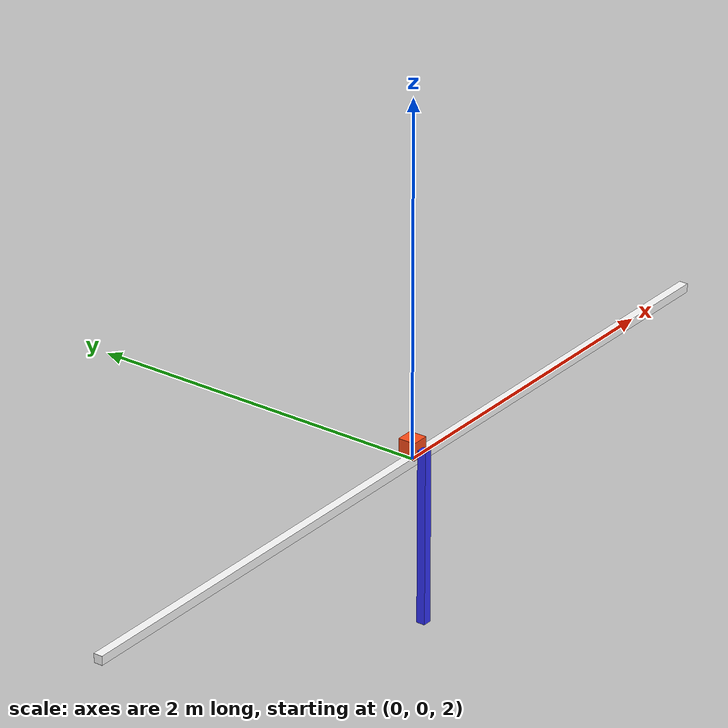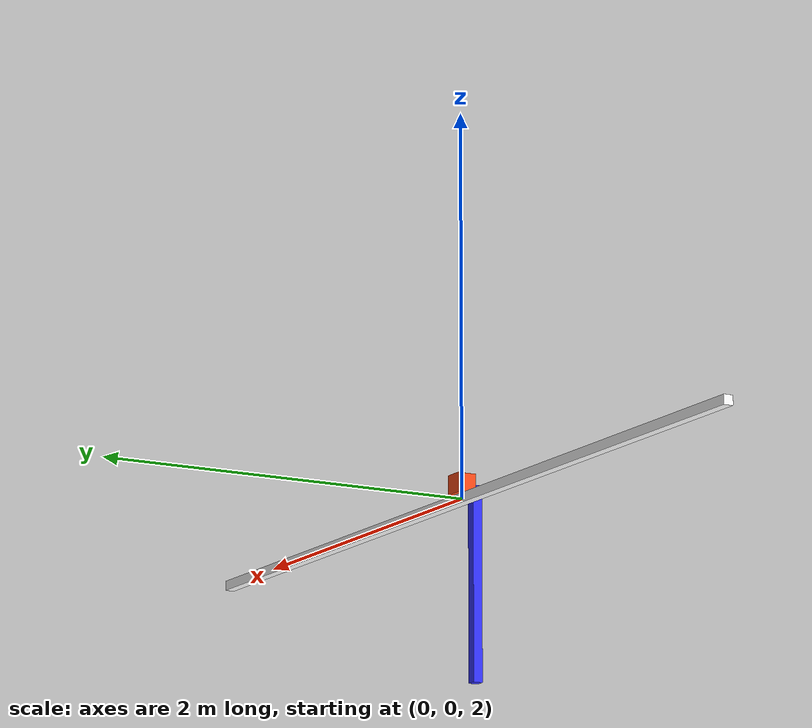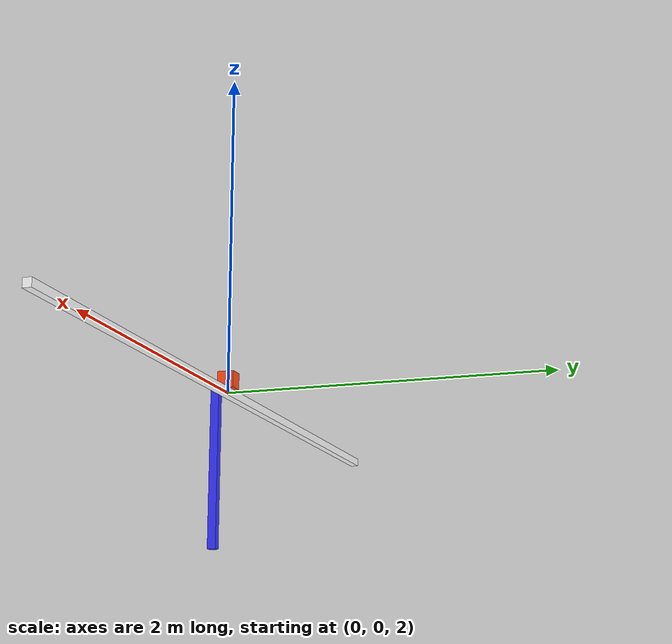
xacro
<?xml version="1.0"?>
<robot xmlns:xacro="http://www.ros.org/wiki/xacro">

    <!-- link colours -->
    <material name="white">
        <color rgba="1 1 1 1"/>
    </material>

    <material name="orange">
        <color rgba="1 0.3 0.1 1"/>
    </material>

    <material name="blue">
        <color rgba="0.2 0.2 1 1"/>
    </material>

    <material name="black">
        <color rgba="0 0 0 1"/>
    </material>

    <xacro:include filename="inertial_macros.xacro" />

    <!-- by convention, the first link for a mobile robot in ros should be named base_link -->
    <link name="world"></link>

    <!-- attaches the chassis to the base link (body frame) -->
    <joint name="bar_joint" type="fixed">
        <parent link="world"/>
        <child link="slider_bar"/>
        <origin xyz="0 0 2"/>
    </joint>

    <!-- bar -->
    <link name="slider_bar">
        <visual>
            <geometry>
                <box size="5 0.05 0.05"/>
            </geometry>
            <material name="white"/>
        </visual>

        <inertial>
            <mass value="1"/>
            <inertia ixx="0" ixy="0" ixz="0" iyy="10" iyz="0" izz="0"/>
        </inertial>
    </link>

    <gazebo reference="slider_bar">
        <material>Gazebo/White</material>
    </gazebo>

    <!-- attaches the cart to the bar link -->
    <joint name="cart_joint" type="prismatic">
        <parent link="slider_bar"/>
        <child link="cart"/>
        <origin xyz="0 0 0.075"/>
        <axis xyz="1 0 0"/>
        <limit effort="500" velocity="1.0" lower="-2.5" upper="2.5" />
    </joint>

    <!-- cart that slides along the bar -->
    <link name="cart">
        <visual>
            <origin xyz="0 0 0"/>
            <geometry>
                <box size="0.1 0.1 0.1"/>
            </geometry>
            <material name="orange"/>
        </visual>

        <inertial>
            <mass value="1"/>
            <inertia ixx="0" iyy="0" izz="0" ixy="0" ixz="0" iyz="0"/>
        </inertial>
    </link>

    <gazebo reference="cart">
        <material>Gazebo/Orange</material>
    </gazebo>

    <!-- attaches the pendulum pole to the cart -->
    <joint name="pole_joint" type="continuous">
        <parent link="cart"/>
        <child link="pole"/>
        <axis xyz="0 1 0"/>
        <origin xyz="0 -0.075 0"/>
        <dynamics damping="0.001" friction="0.001" />
    </joint>

    <!-- pendulum pole -->
    <link name="pole">
        <visual>
            <origin xyz="0 0 -0.5"/>
            <geometry>
                <box size="0.05 0.05 1"/>
            </geometry>
            <material name="blue"/>
        </visual>

        <collision>
            <origin xyz="0 0 -0.5"/>
            <geometry>
                <box size="0.05 0.05 1"/>
            </geometry>
        </collision>

        <xacro:inertial_box mass="1" x="0.05" y="0.05" z="1">
            <origin xyz="0 0 -0.5"/>
        </xacro:inertial_box>
    </link>

    <gazebo reference="pole">
        <material>Gazebo/Blue</material>
    </gazebo>

</robot>

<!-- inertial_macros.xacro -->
<robot xmlns:xacro="http://www.ros.org/wiki/xacro" >

    <!-- Specify some standard inertial calculations https://en.wikipedia.org/wiki/List_of_moments_of_inertia -->
    <!-- These make use of xacro's mathematical functionality -->

    <xacro:macro name="inertial_box" params="mass x y z *origin">
        <inertial>
            <xacro:insert_block name="origin"/>
            <mass value="${mass}" />
            <inertia ixx="${(1/12) * mass * (y*y+z*z)}" ixy="0.0" ixz="0.0"
                    iyy="${(1/12) * mass * (x*x+z*z)}" iyz="0.0"
                    izz="${(1/12) * mass * (x*x+y*y)}" />
        </inertial>
    </xacro:macro>

</robot>
